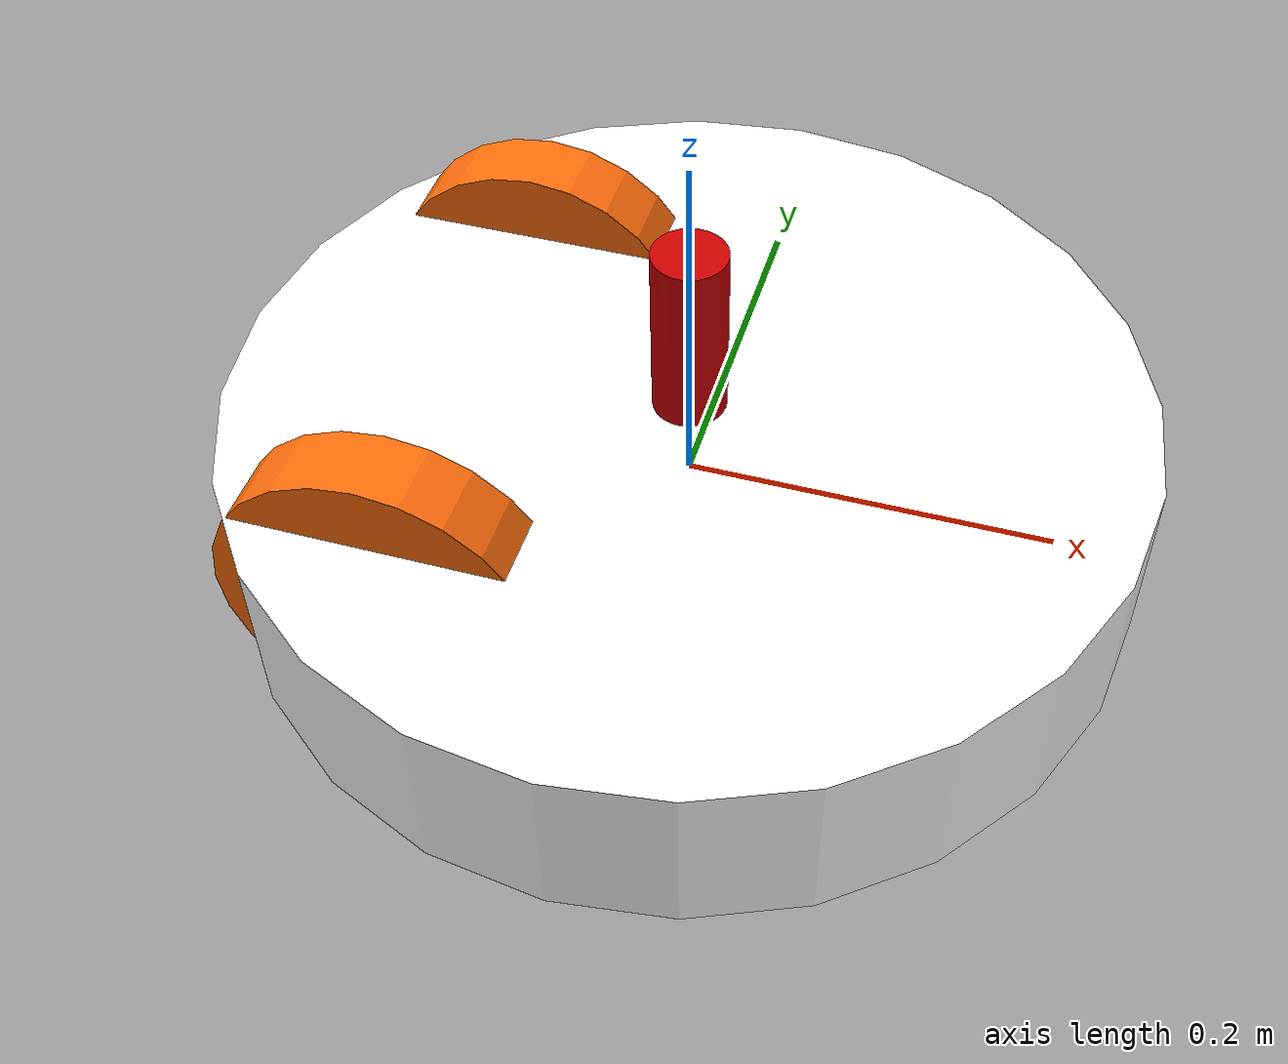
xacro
<?xml version="1.0"?>

<robot name="logger" xmlns:xacro="https://www.ros.org/wiki/xacro" >

    <!-- Included URDF Files -->
    <xacro:include filename="$(find loggers_description)/urdf/logger.urdf.xacro" />

    <!-- Instantiate logger_base_macro once (has no parameters atm) -->
    <xacro:logger_macro model_name="logger"/>
    <!-- differential_drive_controller plugin -->
    <gazebo>
        <plugin name="differential_drive_controller" filename="libgazebo_ros_diff_drive.so">
            <legacyMode>false</legacyMode>
            <alwaysOn>true</alwaysOn>
            <updateRate>100</updateRate>
            <leftJoint>logger-chassis2left_wheel</leftJoint>
            <rightJoint>logger-chassis2right_wheel</rightJoint>
            <wheelSeparation>0.25</wheelSeparation>
            <wheelDiameter>0.18</wheelDiameter>
            <wheelTorque>1</wheelTorque>
            <commandTopic>cmd_vel</commandTopic>
            <odometryTopic>odom</odometryTopic>
            <odometryFrame>odom</odometryFrame>
            <robotBaseFrame>logger-chassis</robotBaseFrame>
        </plugin>
    </gazebo>

</robot>

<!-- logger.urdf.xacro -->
<robot xmlns:xacro="https://www.ros.org/wiki/xacro" >

    <!-- Constants for robot dimensions -->
    <xacro:property name="PI" value="3.1415926535897931"/>
    <!-- properties of link_hat -->
    <xacro:property name="R_HAT" value="0.02"/>
    <xacro:property name="L_HAT" value="0.1"/>
    <xacro:property name="M_HAT" value="0.5"/>
    <!-- properties of link_chassis -->
    <xacro:property name="R_CHASSIS" value="0.25"/>
    <xacro:property name="L_CHASSIS" value="0.1"/>
    <xacro:property name="M_CHASSIS" value="2"/>
    <!-- properties of link_caster -->
    <xacro:property name="R_CASTER" value="0.04"/>
    <xacro:property name="M_CASTER" value="0.1"/>
    <!-- properties of link_wheel -->
    <xacro:property name="R_WHEEL" value="0.09"/>
    <xacro:property name="L_WHEEL" value="0.04"/>
    <xacro:property name="M_WHEEL" value="0.5"/>
    <!-- Import all Gazebo-customization elements, including Gazebo colors -->
    <!-- Import Rviz colors -->
    <xacro:include filename="$(find loggers_description)/urdf/materials.xacro" />

    <!-- building the robot in following-->
    <xacro:macro name="logger_macro" params="model_name">
        <link name="${model_name}-chassis">
            <visual>
                <origin rpy="0 0 0" xyz="0 0 0"/>
                <geometry>
                    <cylinder length="${L_CHASSIS}" radius="${R_CHASSIS}"/>
                </geometry>
                <material name="white"/>
            </visual>
            <collision>
                <origin rpy="0 0 0" xyz="0 0 0"/>
                <geometry>
                    <cylinder length="${L_CHASSIS}" radius="${R_CHASSIS}"/>
                </geometry>
            </collision>
        </link>
        <gazebo reference="${model_name}-chassis">
            <mu1>0.5</mu1>
            <mu2>0.5</mu2>
            <material>Gazebo/White</material>
        </gazebo>
        <!-- kdl does not support a root link with an inertia, create a dummy link only contains inertia of base_link -->
        <joint name="${model_name}-chassis2cha_inertial" type="fixed">
            <origin xyz="0 0 0" rpy="0 0 0" />
            <parent link="${model_name}-chassis" />
            <child link="${model_name}-cha_inertial" />
        </joint>
        <link name="${model_name}-cha_inertial">
            <inertial>
                <mass value="${M_CHASSIS}"/>
                <origin rpy="0 0 0" xyz="0 0 0"/>
                <inertia ixx="${1/12*M_CHASSIS*(3*R_CHASSIS*R_CHASSIS+L_CHASSIS*L_CHASSIS)}" ixy="0" ixz="0" iyy="${1/12*M_CHASSIS*(3*R_CHASSIS*R_CHASSIS+L_CHASSIS*L_CHASSIS)}" iyz="0" izz="${1/2*M_CHASSIS*R_CHASSIS*R_CHASSIS}"/>
            </inertial>
        </link>

        <joint name="${model_name}-chassis2caster" type="fixed">
            <origin rpy="0 0 0" xyz="${R_CHASSIS/2} 0 ${-L_CHASSIS/2}"/>
            <parent link="${model_name}-chassis"/>
            <child link="${model_name}-caster"/>
        </joint>

        <link name="${model_name}-caster">
            <visual>
                <origin rpy="0 0 0" xyz="0 0 0"/>
                <geometry>
                    <sphere radius="${R_CASTER}"/>
                </geometry>
                <material name="grey"/>
            </visual>
            <collision>
                <origin rpy=" 0 0 0" xyz="0 0 0"/>
                <geometry>
                    <sphere radius="${R_CASTER}"/>
                </geometry>
            </collision>
            <inertial>
                <mass value="${M_CASTER}"/>
                <origin rpy="0 0 0" xyz="0 0 0"/>
                <inertia ixx="${2/5*M_CASTER*R_CASTER*R_CASTER}" ixy="0" ixz="0" iyy="${2/5*M_CASTER*R_CASTER*R_CASTER}" iyz="0" izz="${2/5*M_CASTER*R_CASTER*R_CASTER}"/>
            </inertial>
        </link>
        <gazebo reference="${model_name}-caster">
            <mu1>0.0</mu1>
            <mu2>0.0</mu2>
            <material>Gazebo/Grey</material>
        </gazebo>

        <joint name="${model_name}-chassis2left_wheel" type="continuous">
            <origin rpy="0 0 0" xyz="${-R_CHASSIS/2} ${-R_CHASSIS/2} 0"/>
            <parent link="${model_name}-chassis"/>
            <child link="${model_name}-left_wheel" />
            <axis rpy="0 0 0" xyz="0 1 0"/>
        </joint>

        <link name="${model_name}-left_wheel">
            <visual>
                <origin rpy="${PI/2} 0 0" xyz="0 0 0"/>
                <geometry>
                    <cylinder length="${L_WHEEL}" radius="${R_WHEEL}"/>
                </geometry>
                <material name="orange"/>
            </visual>
            <collision>
                <origin rpy="${PI/2} 0 0" xyz="0 0 0" />
                <geometry>
                    <cylinder length="${L_WHEEL}" radius="${R_WHEEL}"/>
                </geometry>
            </collision>
            <inertial>
                <mass value="${M_WHEEL}"/>
                <origin rpy="${PI/2} 0 0" xyz="0 0 0"/>
                <inertia ixx="${1/12*M_WHEEL*(3*R_WHEEL*R_WHEEL+L_WHEEL*L_WHEEL)}" ixy="0" ixz="0" iyy="${1/12*M_WHEEL*(3*R_WHEEL*R_WHEEL+L_WHEEL*L_WHEEL)}" iyz="0" izz="${1/2*M_WHEEL*R_WHEEL*R_WHEEL}"/>
            </inertial>
        </link>
        <gazebo reference="${model_name}-left_wheel">
            <mu1>0.99</mu1>
            <mu2>0.99</mu2>
            <material>Gazebo/Wood</material>
        </gazebo>

        <joint name="${model_name}-chassis2right_wheel" type="continuous">
            <origin rpy="0 0 0" xyz="${-R_CHASSIS/2} ${R_CHASSIS/2} 0"/>
            <parent link="${model_name}-chassis"/>
            <child link="${model_name}-right_wheel" />
            <axis rpy="0 0 0" xyz="0 1 0"/>
        </joint>

        <link name="${model_name}-right_wheel">
            <collision>
                <origin rpy="${PI/2} 0 0" xyz="0 0 0" />
                <geometry>
                    <cylinder length="${L_WHEEL}" radius="${R_WHEEL}"/>
                </geometry>
            </collision>
            <visual>
                <origin rpy="${PI/2} 0 0" xyz="0 0 0"/>
                <geometry>
                    <cylinder length="${L_WHEEL}" radius="${R_WHEEL}"/>
                </geometry>
                <material name="orange"/>
            </visual>
            <inertial>
                <mass value="${M_WHEEL}"/>
                <origin rpy="${PI/2} 0 0" xyz="0 0 0"/>
                <inertia ixx="${1/12*M_WHEEL*(3*R_WHEEL*R_WHEEL+L_WHEEL*L_WHEEL)}" ixy="0" ixz="0" iyy="${1/12*M_WHEEL*(3*R_WHEEL*R_WHEEL+L_WHEEL*L_WHEEL)}" iyz="0" izz="${1/2*M_WHEEL*R_WHEEL*R_WHEEL}"/>
            </inertial>
        </link>
        <gazebo reference="${model_name}-right_wheel">
            <mu1>0.99</mu1>
            <mu2>0.99</mu2>
            <material>Gazebo/Wood</material>
        </gazebo>

    <joint name="${model_name}-chassis2hat" type="continuous">
        <origin rpy="0 0 0" xyz="0.0 0 ${(L_HAT+L_CHASSIS)/2}"/>
        <parent link="${model_name}-chassis"/>
        <child link="${model_name}-hat" />
        <axis rpy="0 0 0" xyz="0 0 1"/>
    </joint>

    <link name="${model_name}-hat">
        <visual>
            <origin rpy="0 0 0" xyz="0 0 0"/>
            <geometry>
                <cylinder length="${L_HAT}" radius="${R_HAT}"/>
            </geometry>
            <material name="red"/>
        </visual>
        <collision>
            <origin rpy="0 0 0" xyz="0 0 0"/>
            <geometry>
                <cylinder length="${L_HAT}" radius="${R_HAT}"/>
            </geometry>
        </collision>
        <inertial>
            <mass value="${M_HAT}"/>
            <origin rpy="0 0 0" xyz="0 0 0.04"/>
            <inertia ixx="${1/12*M_HAT*(3*R_HAT*R_HAT+L_HAT*L_HAT)}" ixy="0" ixz="0" iyy="${1/12*M_HAT*(3*R_HAT*R_HAT+L_HAT*L_HAT)}" iyz="0" izz="${1/2*M_HAT*R_HAT*R_HAT}"/>
        </inertial>
    </link>
    <gazebo reference="${model_name}-hat">
        <mu1>0</mu1>
        <mu2>0</mu2>
        <material>Gazebo/Red</material>
    </gazebo>

    <!-- differential_drive_controller plugin -->

    </xacro:macro>
</robot>

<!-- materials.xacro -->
<robot>

  <material name="black">
    <color rgba="0.0 0.0 0.0 1.0"/>
  </material>

  <material name="blue">
    <color rgba="0.0 0.0 0.8 1.0"/>
  </material>

  <material name="green">
    <color rgba="0.0 0.8 0.0 1.0"/>
  </material>

  <material name="grey">
    <color rgba="0.2 0.2 0.2 1.0"/>
  </material>

  <material name="orange">
    <color rgba="${255/255} ${108/255} ${10/255} 1.0"/>
  </material>

  <material name="brown">
    <color rgba="${222/255} ${207/255} ${195/255} 1.0"/>
  </material>

  <material name="red">
    <color rgba="0.8 0.0 0.0 1.0"/>
  </material>

  <material name="white">
    <color rgba="1.0 1.0 1.0 1.0"/>
  </material>

  <material name="uc_red">
    <color rgba="${224/255} ${1/255} ${34/255} 1.0"/>
  </material>

</robot>
